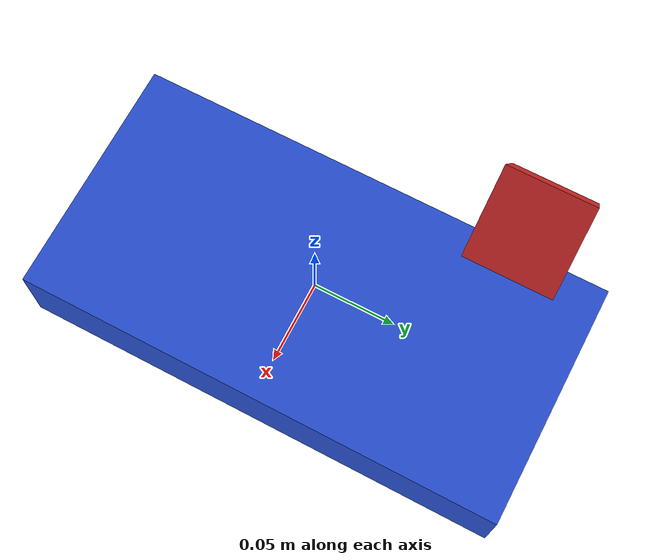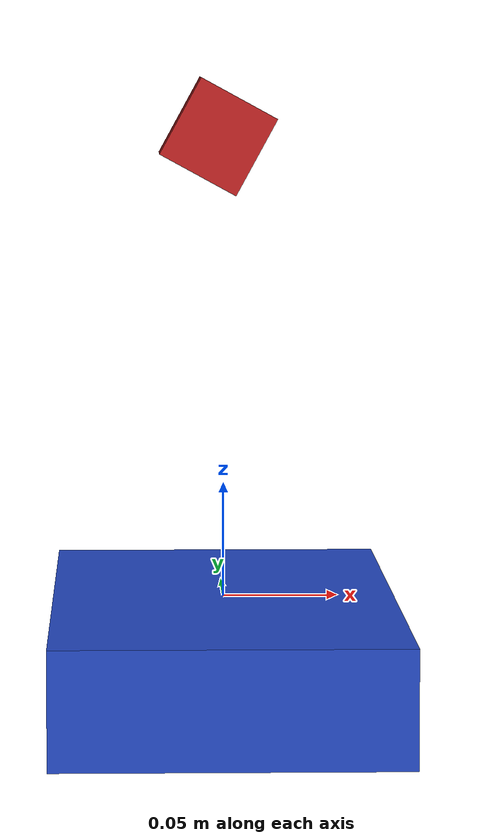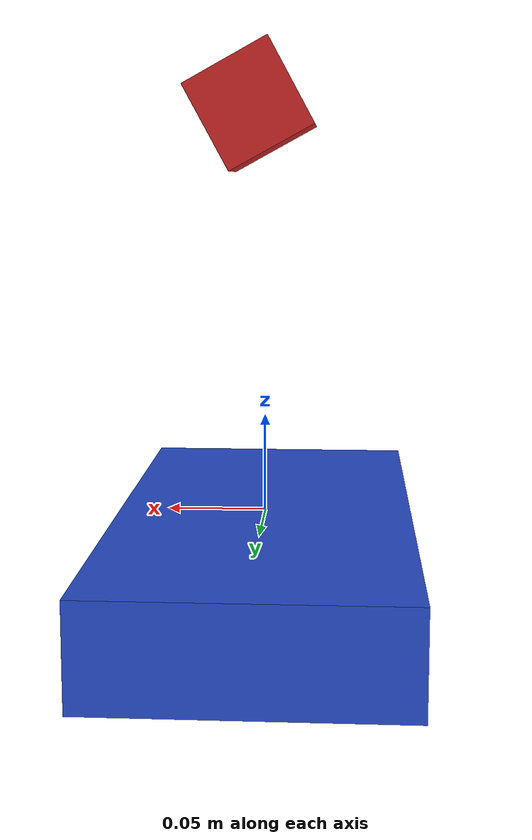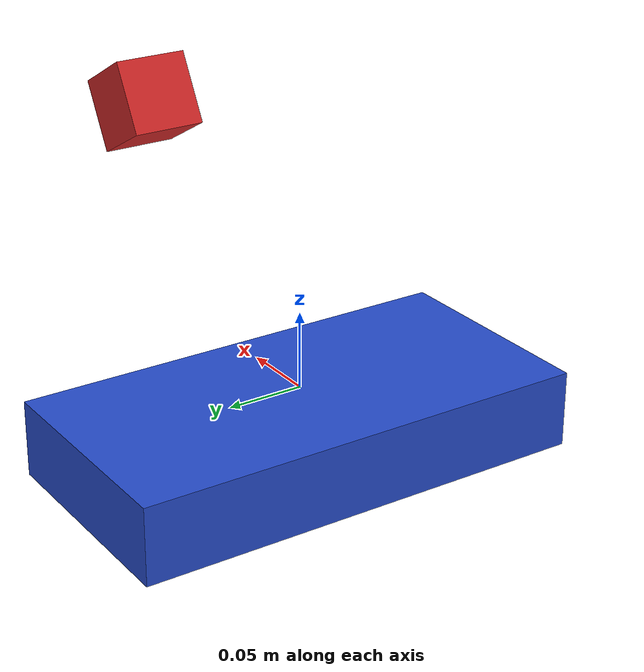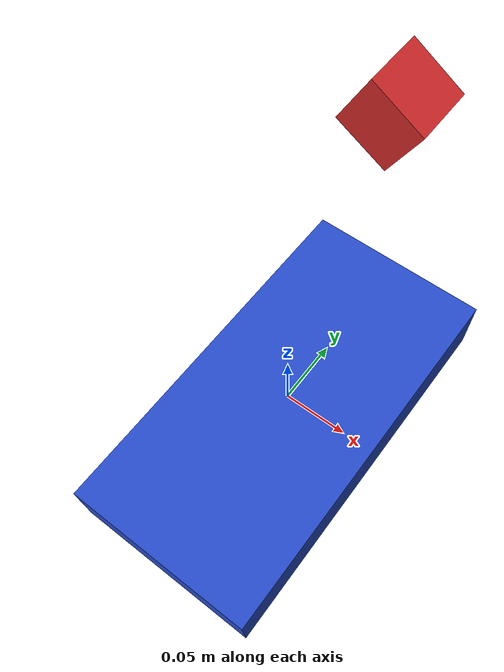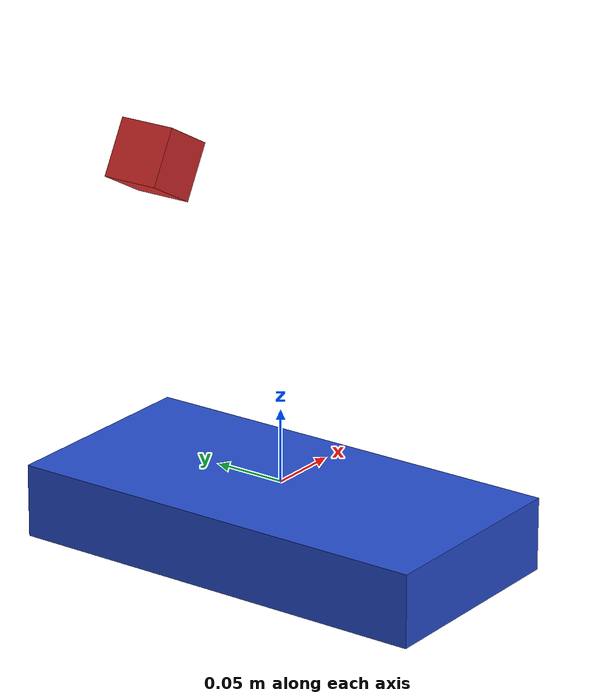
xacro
<?xml version="1.0"?>
<robot name="vehicle_v1" xmlns:xacro="http://www.ros.org/wiki/xacro">
    <xacro:property name="base_l" value="0.3" />
    <xacro:property name="base_w" value="0.15" />
    <xacro:property name="base_h" value="0.05" />

    <xacro:property name="wh_l" value="0.03" />

    <xacro:property name="wh_base_l" value="0.34" />
    <xacro:property name="wh_base_w" value="0.1" />
    <xacro:property name="wh_base_z" value="-0.05" />

    <link name="base_link">
        <!-- pose and inertial -->
        <pose>0 0 0 0 0 0</pose>
        <inertial>
            <mass value="0.5" />
            <origin rpy="0 0 0" xyz="0 0 ${-base_h/2}" />
            <inertia ixx="0.206208333333" ixy="0" ixz="0" iyy="0.206208333333" iyz="0" izz="0.206208333333" />
        </inertial>
        <visual>
            <origin rpy="0 0 0" xyz="0 0 ${-base_h/2}" />
            <geometry>
                <box size="${base_w} ${base_l} ${base_h}" />
            </geometry>
            <material name="blue" />
        </visual>
    </link>

    <joint name="camera_joint" type="fixed">
        <axis xyz="0 1 0" />
        <origin xyz="0 0.1 0.2" rpy="0 0.5 0" />
        <parent link="base_link" />
        <child link="camera1_link" />
    </joint>

    <!-- Camera -->
    <link name="camera1_link">
        <collision>
            <origin xyz="0 0 0" rpy="0 0 0" />
            <geometry>
                <box size="0.04 0.04 0.04" />
            </geometry>
        </collision>

        <visual>
            <origin xyz="0 0 0" rpy="0 0 0" />
            <geometry>
                <box size="0.04 0.04 0.04" />
            </geometry>
            <material name="red" />
        </visual>

        <inertial>
            <mass value="1e-5" />
            <origin xyz="0 0 0" rpy="0 0 0" />
            <inertia ixx="1e-6" ixy="0" ixz="0" iyy="1e-6" iyz="0" izz="1e-6" />
        </inertial>
    </link>

    <gazebo reference="camera1_link">
        <sensor type="camera" name="camera1">
            <update_rate>30.0</update_rate>
            <camera name="head">
                <horizontal_fov>1.2262634</horizontal_fov>
                <image>
                    <width>640</width>
                    <height>480</height>
                    <format>R8G8B8</format>
                </image>
                <clip>
                    <near>0.02</near>
                    <far>300</far>
                </clip>
                <noise>
                    <type>gaussian</type>
                    <!-- Noise is sampled independently per pixel on each frame.
               That pixel's noise value is added to each of its color
               channels, which at that point lie in the range [0,1]. -->
                    <mean>0.0</mean>
                    <stddev>0.007</stddev>
                </noise>
            </camera>
            <plugin name="camera_controller" filename="libgazebo_ros_camera.so">
                <alwaysOn>true</alwaysOn>
                <updateRate>0.0</updateRate>
                <cameraName>camera1</cameraName>
                <imageTopicName>image_raw</imageTopicName>
                <cameraInfoTopicName>camera_info</cameraInfoTopicName>
                <frameName>/camera1_link</frameName>
                <hackBaseline>0.07</hackBaseline>
                <distortionK1>0.0</distortionK1>
                <distortionK2>0.0</distortionK2>
                <distortionK3>0.0</distortionK3>
                <distortionT1>0.0</distortionT1>
                <distortionT2>0.0</distortionT2>
            </plugin>
        </sensor>
    </gazebo>

</robot>
